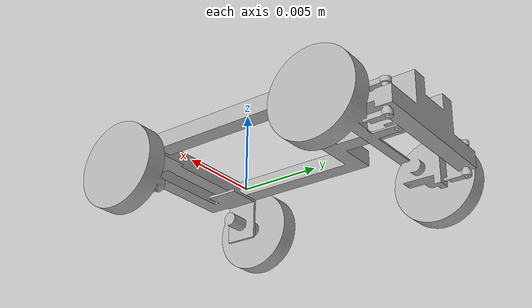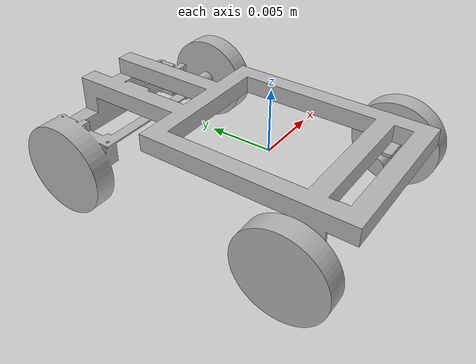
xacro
<?xml version="1.0" ?>
<robot name="AMR" xmlns:xacro="http://www.ros.org/wiki/xacro">

<xacro:include filename="$(find AMR_description)/urdf/materials.xacro" />
<xacro:include filename="$(find AMR_description)/urdf/AMR.trans" />
<xacro:include filename="$(find AMR_description)/urdf/AMR.gazebo" />
<link name="base_link">
  <inertial>
    <origin xyz="-0.12585811187431825 -0.009991615638865326 0.1262502208562287" rpy="0 0 0"/>
    <mass value="2.026999464151311"/>
    <inertia ixx="0.078309" iyy="0.015868" izz="0.092107" ixy="-7.9e-05" iyz="0.004162" ixz="3.3e-05"/>
  </inertial>
  <visual>
    <origin xyz="0 0 0" rpy="0 0 0"/>
    <geometry>
      <mesh filename="package://AMR_description/meshes/base_link.stl" scale="0.001 0.001 0.001"/>
    </geometry>
    <material name="silver"/>
  </visual>
  <collision>
    <origin xyz="0 0 0" rpy="0 0 0"/>
    <geometry>
      <mesh filename="package://AMR_description/meshes/base_link.stl" scale="0.001 0.001 0.001"/>
    </geometry>
  </collision>
</link>

<link name="left_wheel_1">
  <inertial>
    <origin xyz="-0.0447517053927417 6.088811528953686e-05 -0.00034877946676536986" rpy="0 0 0"/>
    <mass value="0.6801302658096016"/>
    <inertia ixx="0.001862" iyy="0.001107" izz="0.001107" ixy="-1e-06" iyz="-0.0" ixz="6e-06"/>
  </inertial>
  <visual>
    <origin xyz="0.260866 0.217077 -0.076813" rpy="0 0 0"/>
    <geometry>
      <mesh filename="package://AMR_description/meshes/left_wheel_1.stl" scale="0.001 0.001 0.001"/>
    </geometry>
    <material name="silver"/>
  </visual>
  <collision>
    <origin xyz="0.260866 0.217077 -0.076813" rpy="0 0 0"/>
    <geometry>
      <mesh filename="package://AMR_description/meshes/left_wheel_1.stl" scale="0.001 0.001 0.001"/>
    </geometry>
  </collision>
</link>

<link name="right_wheel_1">
  <inertial>
    <origin xyz="0.04455099380563 -6.044403907465301e-05 -7.601174263900667e-05" rpy="0 0 0"/>
    <mass value="0.6801302658095815"/>
    <inertia ixx="0.001862" iyy="0.001107" izz="0.001107" ixy="-1e-06" iyz="0.0" ixz="-1e-06"/>
  </inertial>
  <visual>
    <origin xyz="-0.008707 0.216475 -0.076317" rpy="0 0 0"/>
    <geometry>
      <mesh filename="package://AMR_description/meshes/right_wheel_1.stl" scale="0.001 0.001 0.001"/>
    </geometry>
    <material name="silver"/>
  </visual>
  <collision>
    <origin xyz="-0.008707 0.216475 -0.076317" rpy="0 0 0"/>
    <geometry>
      <mesh filename="package://AMR_description/meshes/right_wheel_1.stl" scale="0.001 0.001 0.001"/>
    </geometry>
  </collision>
</link>

<link name="steering_link_1">
  <inertial>
    <origin xyz="-0.0002081496977963948 -0.023427588808987293 -0.020942564923926404" rpy="0 0 0"/>
    <mass value="0.1824412877769118"/>
    <inertia ixx="0.000476" iyy="0.005928" izz="0.005944" ixy="2.3e-05" iyz="1e-06" ixz="7e-06"/>
  </inertial>
  <visual>
    <origin xyz="0.12559 -0.19821 -0.099574" rpy="0 0 0"/>
    <geometry>
      <mesh filename="package://AMR_description/meshes/steering_link_1.stl" scale="0.001 0.001 0.001"/>
    </geometry>
    <material name="silver"/>
  </visual>
  <collision>
    <origin xyz="0.12559 -0.19821 -0.099574" rpy="0 0 0"/>
    <geometry>
      <mesh filename="package://AMR_description/meshes/steering_link_1.stl" scale="0.001 0.001 0.001"/>
    </geometry>
  </collision>
</link>

<joint name="Revolute 1" type="continuous">
  <origin xyz="-0.260866 -0.217077 0.076813" rpy="0 0 0"/>
  <parent link="base_link"/>
  <child link="left_wheel_1"/>
  <axis xyz="0.999969 -0.001358 0.007801"/>
</joint>

<joint name="Revolute 2" type="continuous">
  <origin xyz="0.008707 -0.216475 0.076317" rpy="0 0 0"/>
  <parent link="base_link"/>
  <child link="right_wheel_1"/>
  <axis xyz="-0.999998 0.001357 0.001712"/>
</joint>

<joint name="Revolute 3" type="continuous">
  <origin xyz="-0.12559 0.19821 0.099574" rpy="0 0 0"/>
  <parent link="base_link"/>
  <child link="steering_link_1"/>
  <axis xyz="-0.0 -8.9e-05 1.0"/>
</joint>

</robot>

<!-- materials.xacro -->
<robot name="AMR" xmlns:xacro="http://www.ros.org/wiki/xacro" >

<material name="silver">
  <color rgba="0.700 0.700 0.700 1.000"/>
</material>

</robot>

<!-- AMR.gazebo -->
<robot name="AMR" xmlns:xacro="http://www.ros.org/wiki/xacro" >

<xacro:property name="body_color" value="Gazebo/Silver" />

<gazebo>
  <plugin name="control" filename="libgazebo_ros_control.so"/>
</gazebo>
<gazebo reference="base_link">
  <material>${body_color}</material>
  <mu1>0.2</mu1>
  <mu2>0.2</mu2>
  <selfCollide>true</selfCollide>
  <gravity>true</gravity>
</gazebo>

<gazebo reference="left_wheel_1">
  <material>${body_color}</material>
  <mu1>0.2</mu1>
  <mu2>0.2</mu2>
  <selfCollide>true</selfCollide>
</gazebo>

<gazebo reference="right_wheel_1">
  <material>${body_color}</material>
  <mu1>0.2</mu1>
  <mu2>0.2</mu2>
  <selfCollide>true</selfCollide>
</gazebo>

<gazebo reference="steering_link_1">
  <material>${body_color}</material>
  <mu1>0.2</mu1>
  <mu2>0.2</mu2>
  <selfCollide>true</selfCollide>
</gazebo>

</robot>
